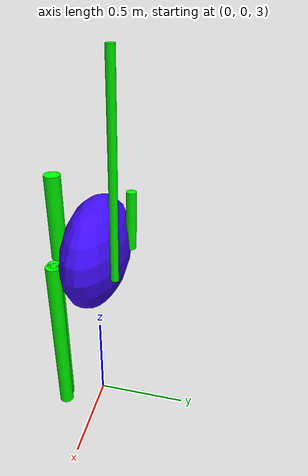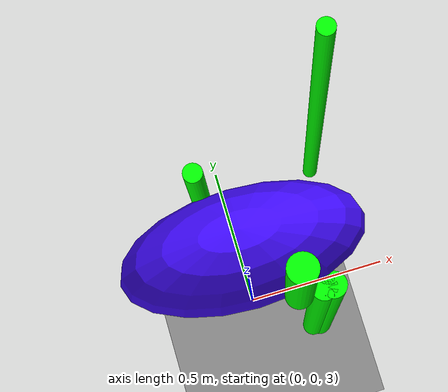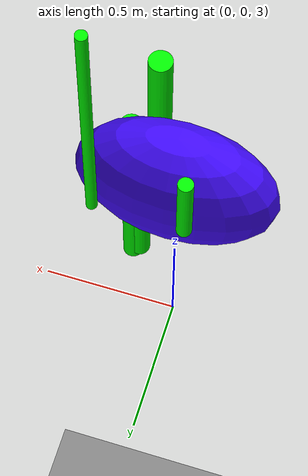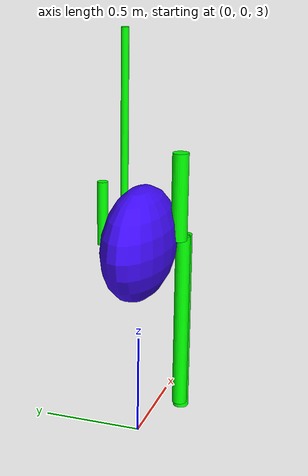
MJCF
<mujoco model="unnamed_model">
  <option timestep="0.01"/>
  <visual>
    <headlight ambient="0.5 0.5 0.5"/>
  </visual>
  <default>
    <default class="/"/>
  </default>
  <worldbody>
    <light name="//unnamed_light_0" class="/" pos="0 0 3" dir="0 0 -1" diffuse="0.5 0.5 0.5"/>
    <geom name="//unnamed_geom_0" class="/" type="plane" size="50 50 0.10000000000000001"/>
    <body name="//unnamed_body_0" pos="0 0 4">
      <joint name="//unnamed_joint_0" class="/" type="free"/>
      <geom name="//unnamed_geom_1" class="/" type="ellipsoid" size="0.34855006222265084 0.16271355725674855 0.27774580117250414" rgba="0.247 0.035000000000000003 0.97999999999999998 1" pos="0 0 0"/>
      <body name="limb0" pos="-0.07214536872898869 0.16271355725674855 0.15427922134028071">
        <geom name="//unnamed_geom_2" class="/" type="cylinder" size="0.025992100353521487 0.15427922134028071" rgba="0 1 0 1"/>
        <joint name="0_joint" class="/" type="hinge" pos="0 0 -0.15427922134028071" axis="0 1 0" range="-45 45"/>
      </body>
      <body name="limb1" pos="0.18172725869811557 -0.16271355725674855 -0.44909702097792314">
        <geom name="//unnamed_geom_3" class="/" type="cylinder" size="0.036787874496359084 0.44909702097792314" rgba="0 1 0 1"/>
        <joint name="1_joint" class="/" type="hinge" pos="0 0 0.44909702097792314" axis="0 1 0" range="-45 45"/>
      </body>
      <body name="limb2" pos="0.2398109715522837 0.16271355725674855 0.49569907090626575">
        <geom name="//unnamed_geom_4" class="/" type="cylinder" size="0.01919967624232893 0.49569907090626575" rgba="0 1 0 1"/>
        <joint name="2_joint" class="/" type="hinge" pos="0 0 -0.49569907090626575" axis="0 1 0" range="-45 45"/>
      </body>
      <body name="limb3" pos="0.20817829787819842 -0.16271355725674855 -0.46463379186780784">
        <geom name="//unnamed_geom_5" class="/" type="cylinder" size="0.038389386516353104 0.46463379186780784" rgba="0 1 0 1"/>
        <joint name="3_joint" class="/" type="hinge" pos="0 0 0.46463379186780784" axis="0 1 0" range="-45 45"/>
      </body>
      <body name="limb4" pos="0.10990338234435781 -0.16271355725674855 0.21619289323229915">
        <geom name="//unnamed_geom_6" class="/" type="cylinder" size="0.039937383079740228 0.21619289323229915" rgba="0 1 0 1"/>
        <joint name="4_joint" class="/" type="hinge" pos="0 0 -0.21619289323229915" axis="0 1 0" range="-45 45"/>
      </body>
    </body>
  </worldbody>
  <actuator>
    <motor name="motor_0_joint" class="/" ctrllimited="true" ctrlrange="-45 45" gear="10" joint="0_joint"/>
    <motor name="motor_1_joint" class="/" ctrllimited="true" ctrlrange="-45 45" gear="10" joint="1_joint"/>
    <motor name="motor_2_joint" class="/" ctrllimited="true" ctrlrange="-45 45" gear="10" joint="2_joint"/>
    <motor name="motor_3_joint" class="/" ctrllimited="true" ctrlrange="-45 45" gear="10" joint="3_joint"/>
    <motor name="motor_4_joint" class="/" ctrllimited="true" ctrlrange="-45 45" gear="10" joint="4_joint"/>
  </actuator>
</mujoco>
